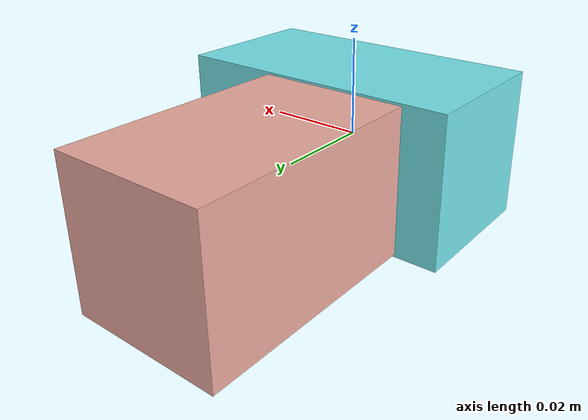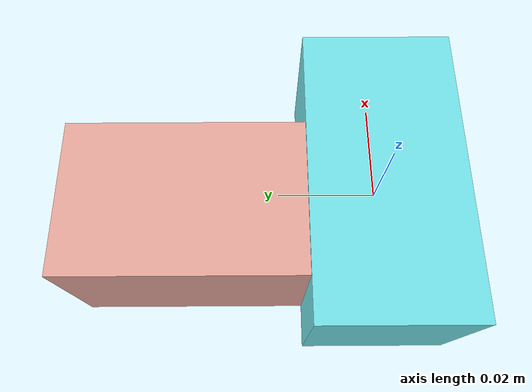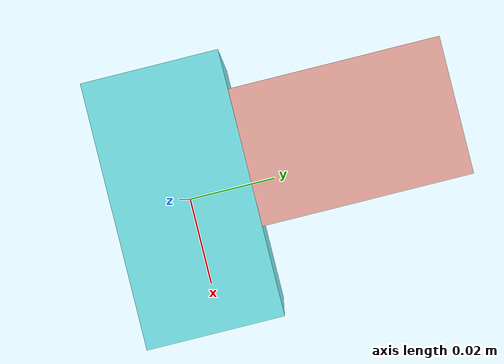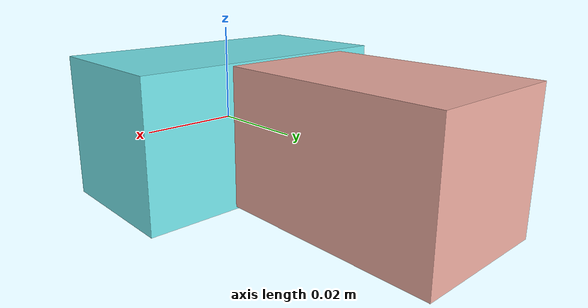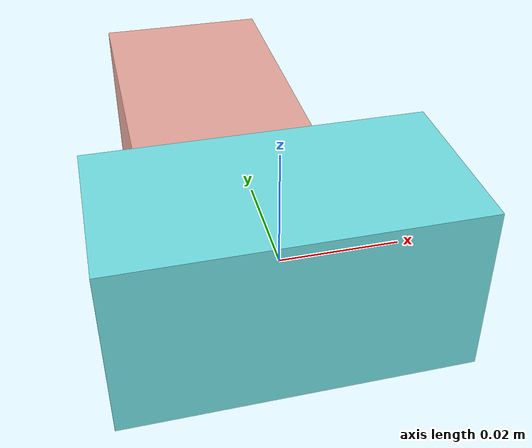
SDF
<sdf version="1.4"><world name="default"><model name="object0"><link name="link1"><pose>0 0 0 0 0 0</pose><inertial><pose>0 0 0 0 0 0</pose><mass>0.03136007331004675</mass><inertia><ixx>4.704010996507012e-06</ixx><ixy>0</ixy><iyy>1.1165790290981579e-05</iyy><ixz>0</ixz><iyz>0</iyz><izz>1.1165790290981579e-05</izz></inertia></inertial><visual name="link1_visual"><pose>0 0  0 0 0 0</pose><geometry><box><size>0.058074209833419904 0.03 0.03</size></box></geometry><material><diffuse>0.46084809132712373 0.9068519449813501 0.9271226005158026 1</diffuse></material></visual><collision><pose>0 0  0 0 0 0</pose><geometry><box><size>0.058074209833419904 0.03 0.03</size></box></geometry></collision></link><link name="link2"><pose>-0.005449369763272795 0.029193554787319165 0 0 0 0</pose><inertial><pose>0 0 0 0 0 0</pose><mass>0.03456399115126886</mass><inertia><ixx>1.4222927124081163e-05</ixx><ixy>0</ixy><iyy>5.014659049529924e-06</iyy><ixz>0</ixz><iyz>0</iyz><izz>1.439286674724157e-05</izz></inertia></inertial><visual name="link2_visual"><pose>0 0  0 0 0 0</pose><geometry><box><size>0.03 0.06400739102086828 0.028999999999999998</size></box></geometry><material><diffuse>0.9296008849104451 0.6724106027307972 0.6296248671968108 1</diffuse></material></visual><collision><pose>0 0  0 0 0 0</pose><geometry><box><size>0.03 0.06400739102086828 0.028999999999999998</size></box></geometry></collision></link><joint name="link_joint_0" type="fixed"><parent>link1</parent><child>link2</child><pose>0 0 0 0 0 0</pose><axis><xyz>0 0 1</xyz></axis></joint></model></world></sdf>
